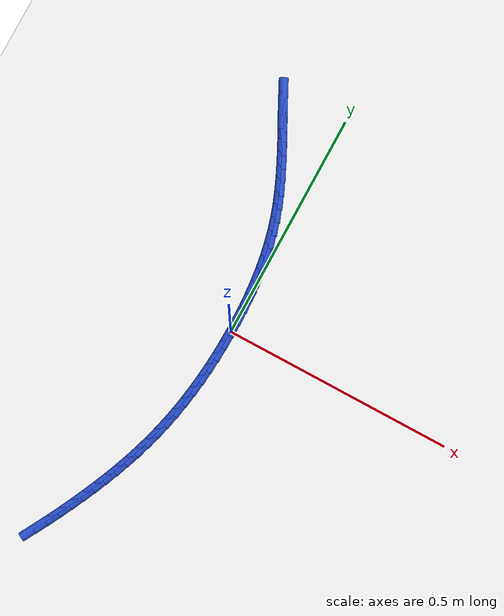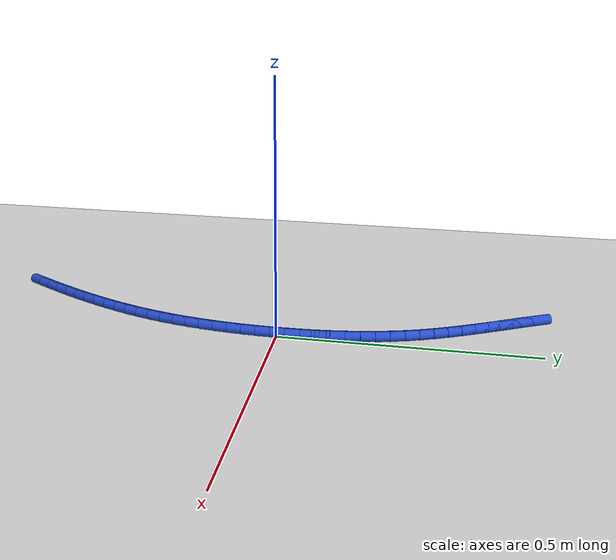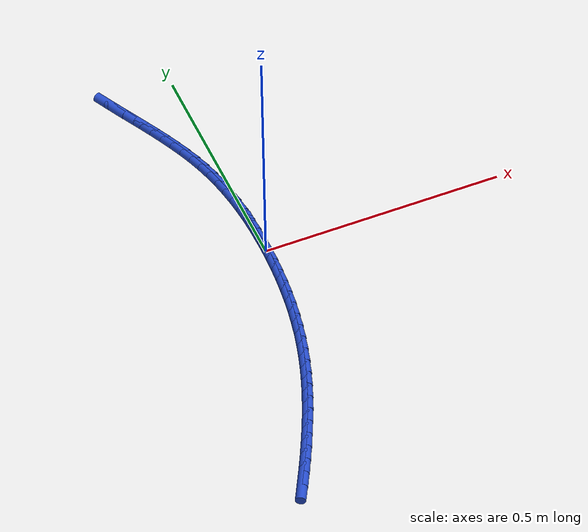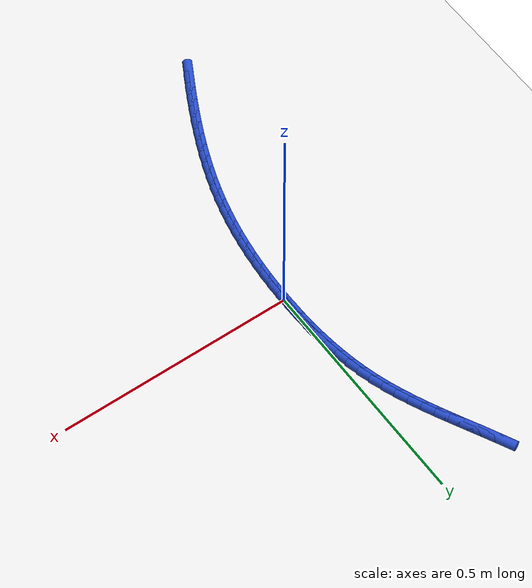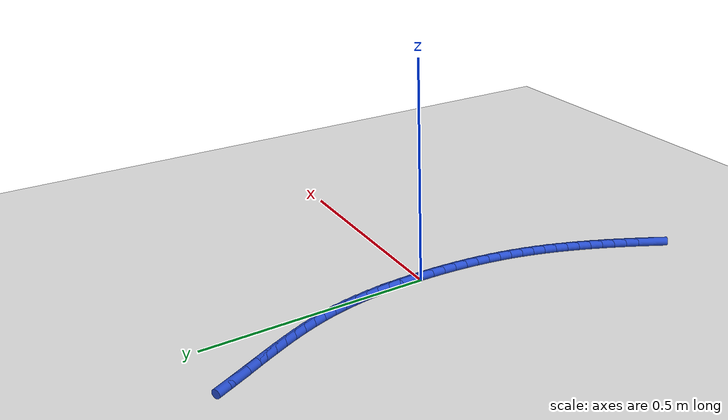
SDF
<sdf version="1.6">
 <world name="default">
  <model name="ground_plane">
   <static>1</static>
   <link name="link">
    <collision name="collision">
     <geometry><plane><normal>0 0 1</normal><size>100 100</size></plane></geometry>
     <surface><friction><ode><mu>100</mu><mu2>50</mu2></ode></friction></surface>
    </collision>
    <visual name="visual">
     <cast_shadows>0</cast_shadows>
     <geometry><plane><normal>0 0 1</normal><size>100 100</size></plane></geometry>
     <material>
      <script><uri>file://media/materials/scripts/gazebo.material</uri><name>Gazebo/WhiteGlow</name></script>
     </material>
    </visual>
   </link>
  </model>
  <model name="line">
   <link name="link_0">
    <pose>5.204170427930421e-18 5.551115123125783e-17 0.01 0 1.57 -1.568517945072388</pose>
    <collision name="collision">
     <geometry><cylinder><radius>0.01</radius><length>0.08</length></cylinder></geometry>
    </collision>
    <visual name="visual">
     <material>
      <script><name>Gazebo/Blue</name><uri>file://media/materials/scripts/gazebo.material</uri></script>
     </material>
     <geometry><cylinder><radius>0.01</radius><length>0.08</length></cylinder></geometry>
    </visual>
   </link>
   <link name="link_1">
    <pose>-6.546011237954096e-05 0.028730918293670336 0.01 0 1.57 -1.5427362013400832</pose>
    <collision name="collision">
     <geometry><cylinder><radius>0.01</radius><length>0.08</length></cylinder></geometry>
    </collision>
    <visual name="visual">
     <material>
      <script><name>Gazebo/Blue</name><uri>file://media/materials/scripts/gazebo.material</uri></script>
     </material>
     <geometry><cylinder><radius>0.01</radius><length>0.08</length></cylinder></geometry>
    </visual>
   </link>
   <link name="link_2">
    <pose>-0.0008714124399033945 0.057445714668465736 0.01 0 1.57 -1.5145626425322647</pose>
    <collision name="collision">
     <geometry><cylinder><radius>0.01</radius><length>0.08</length></cylinder></geometry>
    </collision>
    <visual name="visual">
     <material>
      <script><name>Gazebo/Blue</name><uri>file://media/materials/scripts/gazebo.material</uri></script>
     </material>
     <geometry><cylinder><radius>0.01</radius><length>0.08</length></cylinder></geometry>
    </visual>
   </link>
   <link name="link_3">
    <pose>-0.002483616302797522 0.08608520611659495 0.01 0 1.57 -1.4838658375514164</pose>
    <collision name="collision">
     <geometry><cylinder><radius>0.01</radius><length>0.08</length></cylinder></geometry>
    </collision>
    <visual name="visual">
     <material>
      <script><name>Gazebo/Blue</name><uri>file://media/materials/scripts/gazebo.material</uri></script>
     </material>
     <geometry><cylinder><radius>0.01</radius><length>0.08</length></cylinder></geometry>
    </visual>
   </link>
   <link name="link_4">
    <pose>-0.004967831021287884 0.1145902096302667 0.01 0 1.57 -1.450510043880159</pose>
    <collision name="collision">
     <geometry><cylinder><radius>0.01</radius><length>0.08</length></cylinder></geometry>
    </collision>
    <visual name="visual">
     <material>
      <script><name>Gazebo/Blue</name><uri>file://media/materials/scripts/gazebo.material</uri></script>
     </material>
     <geometry><cylinder><radius>0.01</radius><length>0.08</length></cylinder></geometry>
    </visual>
   </link>
   <link name="link_5">
    <pose>-0.008389815915600448 0.14290154220168974 0.01 0 1.57 -1.414360380445874</pose>
    <collision name="collision">
     <geometry><cylinder><radius>0.01</radius><length>0.08</length></cylinder></geometry>
    </collision>
    <visual name="visual">
     <material>
      <script><name>Gazebo/Blue</name><uri>file://media/materials/scripts/gazebo.material</uri></script>
     </material>
     <geometry><cylinder><radius>0.01</radius><length>0.08</length></cylinder></geometry>
    </visual>
   </link>
   <link name="link_6">
    <pose>-0.01281533030596118 0.17096002082307274 0.01 0 1.57 -1.3752896316140557</pose>
    <collision name="collision">
     <geometry><cylinder><radius>0.01</radius><length>0.08</length></cylinder></geometry>
    </collision>
    <visual name="visual">
     <material>
      <script><name>Gazebo/Blue</name><uri>file://media/materials/scripts/gazebo.material</uri></script>
     </material>
     <geometry><cylinder><radius>0.01</radius><length>0.08</length></cylinder></geometry>
    </visual>
   </link>
   <link name="link_7">
    <pose>-0.018310133512596034 0.19870646248662432 0.01 0 1.57 -1.3331869514808536</pose>
    <collision name="collision">
     <geometry><cylinder><radius>0.01</radius><length>0.08</length></cylinder></geometry>
    </collision>
    <visual name="visual">
     <material>
      <script><name>Gazebo/Blue</name><uri>file://media/materials/scripts/gazebo.material</uri></script>
     </material>
     <geometry><cylinder><radius>0.01</radius><length>0.08</length></cylinder></geometry>
    </visual>
   </link>
   <link name="link_8">
    <pose>-0.02493998485573099 0.22608168418455338 0.01 0 1.57 -1.2879750825685923</pose>
    <collision name="collision">
     <geometry><cylinder><radius>0.01</radius><length>0.08</length></cylinder></geometry>
    </collision>
    <visual name="visual">
     <material>
      <script><name>Gazebo/Blue</name><uri>file://media/materials/scripts/gazebo.material</uri></script>
     </material>
     <geometry><cylinder><radius>0.01</radius><length>0.08</length></cylinder></geometry>
    </visual>
   </link>
   <link name="link_9">
    <pose>-0.03277048302589974 0.2530266002973392 0.01 0 1.57 -1.2419998102372325</pose>
    <collision name="collision">
     <geometry><cylinder><radius>0.01</radius><length>0.08</length></cylinder></geometry>
    </collision>
    <visual name="visual">
     <material>
      <script><name>Gazebo/Blue</name><uri>file://media/materials/scripts/gazebo.material</uri></script>
     </material>
     <geometry><cylinder><radius>0.01</radius><length>0.08</length></cylinder></geometry>
    </visual>
   </link>
   <link name="link_10">
    <pose>-0.04180870425800232 0.27951760681951265 0.01 0 1.57 -1.2013344754317694</pose>
    <collision name="collision">
     <geometry><cylinder><radius>0.01</radius><length>0.08</length></cylinder></geometry>
    </collision>
    <visual name="visual">
     <material>
      <script><name>Gazebo/Blue</name><uri>file://media/materials/scripts/gazebo.material</uri></script>
     </material>
     <geometry><cylinder><radius>0.01</radius><length>0.08</length></cylinder></geometry>
    </visual>
   </link>
   <link name="link_11">
    <pose>-0.051916398236841216 0.30561920986515134 0.01 0 1.57 -1.1670903041491385</pose>
    <collision name="collision">
     <geometry><cylinder><radius>0.01</radius><length>0.08</length></cylinder></geometry>
    </collision>
    <visual name="visual">
     <material>
      <script><name>Gazebo/Blue</name><uri>file://media/materials/scripts/gazebo.material</uri></script>
     </material>
     <geometry><cylinder><radius>0.01</radius><length>0.08</length></cylinder></geometry>
    </visual>
   </link>
   <link name="link_12">
    <pose>-0.06293314005880227 0.3314093597925878 0.01 0 1.57 -1.1393570549071346</pose>
    <collision name="collision">
     <geometry><cylinder><radius>0.01</radius><length>0.08</length></cylinder></geometry>
    </collision>
    <visual name="visual">
     <material>
      <script><name>Gazebo/Blue</name><uri>file://media/materials/scripts/gazebo.material</uri></script>
     </material>
     <geometry><cylinder><radius>0.01</radius><length>0.08</length></cylinder></geometry>
    </visual>
   </link>
   <link name="link_13">
    <pose>-0.0746985048202713 0.3569660069601546 0.01 0 1.57 -1.118136493532173</pose>
    <collision name="collision">
     <geometry><cylinder><radius>0.01</radius><length>0.08</length></cylinder></geometry>
    </collision>
    <visual name="visual">
     <material>
      <script><name>Gazebo/Blue</name><uri>file://media/materials/scripts/gazebo.material</uri></script>
     </material>
     <geometry><cylinder><radius>0.01</radius><length>0.08</length></cylinder></geometry>
    </visual>
   </link>
   <link name="link_14">
    <pose>-0.08705206761763412 0.38236710172618454 0.01 0 1.57 -1.1033778785597421</pose>
    <collision name="collision">
     <geometry><cylinder><radius>0.01</radius><length>0.08</length></cylinder></geometry>
    </collision>
    <visual name="visual">
     <material>
      <script><name>Gazebo/Blue</name><uri>file://media/materials/scripts/gazebo.material</uri></script>
     </material>
     <geometry><cylinder><radius>0.01</radius><length>0.08</length></cylinder></geometry>
    </visual>
   </link>
   <link name="link_15">
    <pose>-0.0998334035472766 0.40769059444901 0.01 0 1.57 -1.0950053365914658</pose>
    <collision name="collision">
     <geometry><cylinder><radius>0.01</radius><length>0.08</length></cylinder></geometry>
    </collision>
    <visual name="visual">
     <material>
      <script><name>Gazebo/Blue</name><uri>file://media/materials/scripts/gazebo.material</uri></script>
     </material>
     <geometry><cylinder><radius>0.01</radius><length>0.08</length></cylinder></geometry>
    </visual>
   </link>
   <link name="link_16">
    <pose>-0.1128820877055846 0.43301443548696383 0.01 0 1.57 -1.0929364655374936</pose>
    <collision name="collision">
     <geometry><cylinder><radius>0.01</radius><length>0.08</length></cylinder></geometry>
    </collision>
    <visual name="visual">
     <material>
      <script><name>Gazebo/Blue</name><uri>file://media/materials/scripts/gazebo.material</uri></script>
     </material>
     <geometry><cylinder><radius>0.01</radius><length>0.08</length></cylinder></geometry>
    </visual>
   </link>
   <link name="link_17">
    <pose>-0.12603769518894398 0.4584165751983787 0.01 0 1.57 -1.097092465461059</pose>
    <collision name="collision">
     <geometry><cylinder><radius>0.01</radius><length>0.08</length></cylinder></geometry>
    </collision>
    <visual name="visual">
     <material>
      <script><name>Gazebo/Blue</name><uri>file://media/materials/scripts/gazebo.material</uri></script>
     </material>
     <geometry><cylinder><radius>0.01</radius><length>0.08</length></cylinder></geometry>
    </visual>
   </link>
   <link name="link_18">
    <pose>-0.13913980109374052 0.483974963941587 0.01 0 1.57 -1.107400438641858</pose>
    <collision name="collision">
     <geometry><cylinder><radius>0.01</radius><length>0.08</length></cylinder></geometry>
    </collision>
    <visual name="visual">
     <material>
      <script><name>Gazebo/Blue</name><uri>file://media/materials/scripts/gazebo.material</uri></script>
     </material>
     <geometry><cylinder><radius>0.01</radius><length>0.08</length></cylinder></geometry>
    </visual>
   </link>
   <link name="link_230">
    <pose>-0.15592374459036507 -0.5424151679701464 0.01 0 1.57 1.070445430609143</pose>
    <collision name="collision">
     <geometry><cylinder><radius>0.01</radius><length>0.08</length></cylinder></geometry>
    </collision>
    <visual name="visual">
     <material>
      <script><name>Gazebo/Blue</name><uri>file://media/materials/scripts/gazebo.material</uri></script>
     </material>
     <geometry><cylinder><radius>0.01</radius><length>0.08</length></cylinder></geometry>
    </visual>
   </link>
   <link name="link_231">
    <pose>-0.1416861275912206 -0.5163751066151642 0.01 0 1.57 1.088907843777583</pose>
    <collision name="collision">
     <geometry><cylinder><radius>0.01</radius><length>0.08</length></cylinder></geometry>
    </collision>
    <visual name="visual">
     <material>
      <script><name>Gazebo/Blue</name><uri>file://media/materials/scripts/gazebo.material</uri></script>
     </material>
     <geometry><cylinder><radius>0.01</radius><length>0.08</length></cylinder></geometry>
    </visual>
   </link>
   <link name="link_232">
    <pose>-0.12801228856519592 -0.4902307756971383 0.01 0 1.57 1.1046193153688186</pose>
    <collision name="collision">
     <geometry><cylinder><radius>0.01</radius><length>0.08</length></cylinder></geometry>
    </collision>
    <visual name="visual">
     <material>
      <script><name>Gazebo/Blue</name><uri>file://media/materials/scripts/gazebo.material</uri></script>
     </material>
     <geometry><cylinder><radius>0.01</radius><length>0.08</length></cylinder></geometry>
    </visual>
   </link>
   <link name="link_233">
    <pose>-0.11486792053843643 -0.464107440248801 0.01 0 1.57 1.1206244490144897</pose>
    <collision name="collision">
     <geometry><cylinder><radius>0.01</radius><length>0.08</length></cylinder></geometry>
    </collision>
    <visual name="visual">
     <material>
      <script><name>Gazebo/Blue</name><uri>file://media/materials/scripts/gazebo.material</uri></script>
     </material>
     <geometry><cylinder><radius>0.01</radius><length>0.08</length></cylinder></geometry>
    </visual>
   </link>
   <link name="link_234">
    <pose>-0.1022644091082261 -0.43802763410849715 0.01 0 1.57 1.1388217117007673</pose>
    <collision name="collision">
     <geometry><cylinder><radius>0.01</radius><length>0.08</length></cylinder></geometry>
    </collision>
    <visual name="visual">
     <material>
      <script><name>Gazebo/Blue</name><uri>file://media/materials/scripts/gazebo.material</uri></script>
     </material>
     <geometry><cylinder><radius>0.01</radius><length>0.08</length></cylinder></geometry>
    </visual>
   </link>
   <link name="link_235">
    <pose>-0.09024191078790415 -0.41194920509458255 0.01 0 1.57 1.1592446035690944</pose>
    <collision name="collision">
     <geometry><cylinder><radius>0.01</radius><length>0.08</length></cylinder></geometry>
    </collision>
    <visual name="visual">
     <material>
      <script><name>Gazebo/Blue</name><uri>file://media/materials/scripts/gazebo.material</uri></script>
     </material>
     <geometry><cylinder><radius>0.01</radius><length>0.08</length></cylinder></geometry>
    </visual>
   </link>
   <link name="link_236">
    <pose>-0.0788410307709803 -0.38582899225202544 0.01 0 1.57 1.1818774185790204</pose>
    <collision name="collision">
     <geometry><cylinder><radius>0.01</radius><length>0.08</length></cylinder></geometry>
    </collision>
    <visual name="visual">
     <material>
      <script><name>Gazebo/Blue</name><uri>file://media/materials/scripts/gazebo.material</uri></script>
     </material>
     <geometry><cylinder><radius>0.01</radius><length>0.08</length></cylinder></geometry>
    </visual>
   </link>
   <link name="link_237">
    <pose>-0.06810237425096409 -0.3596238346257938 0.01 0 1.57 1.2066811322871094</pose>
    <collision name="collision">
     <geometry><cylinder><radius>0.01</radius><length>0.08</length></cylinder></geometry>
    </collision>
    <visual name="visual">
     <material>
      <script><name>Gazebo/Blue</name><uri>file://media/materials/scripts/gazebo.material</uri></script>
     </material>
     <geometry><cylinder><radius>0.01</radius><length>0.08</length></cylinder></geometry>
    </visual>
   </link>
   <link name="link_238">
    <pose>-0.05806654642136515 -0.3332905712608557 0.01 0 1.57 1.2335902544658184</pose>
    <collision name="collision">
     <geometry><cylinder><radius>0.01</radius><length>0.08</length></cylinder></geometry>
    </collision>
    <visual name="visual">
     <material>
      <script><name>Gazebo/Blue</name><uri>file://media/materials/scripts/gazebo.material</uri></script>
     </material>
     <geometry><cylinder><radius>0.01</radius><length>0.08</length></cylinder></geometry>
    </visual>
   </link>
   <link name="link_239">
    <pose>-0.04877415247569306 -0.30678604120217917 0.01 0 1.57 1.2625101369785536</pose>
    <collision name="collision">
     <geometry><cylinder><radius>0.01</radius><length>0.08</length></cylinder></geometry>
    </collision>
    <visual name="visual">
     <material>
      <script><name>Gazebo/Blue</name><uri>file://media/materials/scripts/gazebo.material</uri></script>
     </material>
     <geometry><cylinder><radius>0.01</radius><length>0.08</length></cylinder></geometry>
    </visual>
   </link>
   <link name="link_240">
    <pose>-0.04026579760745766 -0.28006708349473314 0.01 0 1.57 1.293315060288178</pose>
    <collision name="collision">
     <geometry><cylinder><radius>0.01</radius><length>0.08</length></cylinder></geometry>
    </collision>
    <visual name="visual">
     <material>
      <script><name>Gazebo/Blue</name><uri>file://media/materials/scripts/gazebo.material</uri></script>
     </material>
     <geometry><cylinder><radius>0.01</radius><length>0.08</length></cylinder></geometry>
    </visual>
   </link>
   <link name="link_241">
    <pose>-0.03258208701016808 -0.25309053718348407 0.01 0 1.57 1.3255727635510217</pose>
    <collision name="collision">
     <geometry><cylinder><radius>0.01</radius><length>0.08</length></cylinder></geometry>
    </collision>
    <visual name="visual">
     <material>
      <script><name>Gazebo/Blue</name><uri>file://media/materials/scripts/gazebo.material</uri></script>
     </material>
     <geometry><cylinder><radius>0.01</radius><length>0.08</length></cylinder></geometry>
    </visual>
   </link>
   <link name="link_242">
    <pose>-0.02575745863064604 -0.22582040884873242 0.01 0 1.57 1.3573663710960382</pose>
    <collision name="collision">
     <geometry><cylinder><radius>0.01</radius><length>0.08</length></cylinder></geometry>
    </collision>
    <visual name="visual">
     <material>
      <script><name>Gazebo/Blue</name><uri>file://media/materials/scripts/gazebo.material</uri></script>
     </material>
     <geometry><cylinder><radius>0.01</radius><length>0.08</length></cylinder></geometry>
    </visual>
   </link>
   <link name="link_243">
    <pose>-0.019785931866879054 -0.19826767925414698 0.01 0 1.57 1.3879801206289741</pose>
    <collision name="collision">
     <geometry><cylinder><radius>0.01</radius><length>0.08</length></cylinder></geometry>
    </collision>
    <visual name="visual">
     <material>
      <script><name>Gazebo/Blue</name><uri>file://media/materials/scripts/gazebo.material</uri></script>
     </material>
     <geometry><cylinder><radius>0.01</radius><length>0.08</length></cylinder></geometry>
    </visual>
   </link>
   <link name="link_244">
    <pose>-0.01464524971911922 -0.17046224549052566 0.01 0 1.57 1.4174461666150207</pose>
    <collision name="collision">
     <geometry><cylinder><radius>0.01</radius><length>0.08</length></cylinder></geometry>
    </collision>
    <visual name="visual">
     <material>
      <script><name>Gazebo/Blue</name><uri>file://media/materials/scripts/gazebo.material</uri></script>
     </material>
     <geometry><cylinder><radius>0.01</radius><length>0.08</length></cylinder></geometry>
    </visual>
   </link>
   <link name="link_245">
    <pose>-0.01031311051292529 -0.14243405656931413 0.01 0 1.57 1.4458038285823545</pose>
    <collision name="collision">
     <geometry><cylinder><radius>0.01</radius><length>0.08</length></cylinder></geometry>
    </collision>
    <visual name="visual">
     <material>
      <script><name>Gazebo/Blue</name><uri>file://media/materials/scripts/gazebo.material</uri></script>
     </material>
     <geometry><cylinder><radius>0.01</radius><length>0.08</length></cylinder></geometry>
    </visual>
   </link>
   <link name="link_246">
    <pose>-0.0067672125738559965 -0.114213061501958 0.01 0 1.57 1.4730963682661622</pose>
    <collision name="collision">
     <geometry><cylinder><radius>0.01</radius><length>0.08</length></cylinder></geometry>
    </collision>
    <visual name="visual">
     <material>
      <script><name>Gazebo/Blue</name><uri>file://media/materials/scripts/gazebo.material</uri></script>
     </material>
     <geometry><cylinder><radius>0.01</radius><length>0.08</length></cylinder></geometry>
    </visual>
   </link>
   <link name="link_247">
    <pose>-0.003985254227470078 -0.08582920929990284 0.01 0 1.57 1.4993699269335499</pose>
    <collision name="collision">
     <geometry><cylinder><radius>0.01</radius><length>0.08</length></cylinder></geometry>
    </collision>
    <visual name="visual">
     <material>
      <script><name>Gazebo/Blue</name><uri>file://media/materials/scripts/gazebo.material</uri></script>
     </material>
     <geometry><cylinder><radius>0.01</radius><length>0.08</length></cylinder></geometry>
    </visual>
   </link>
   <link name="link_248">
    <pose>-0.00194493379932628 -0.05731244897459445 0.01 0 1.57 1.524672628677885</pose>
    <collision name="collision">
     <geometry><cylinder><radius>0.01</radius><length>0.08</length></cylinder></geometry>
    </collision>
    <visual name="visual">
     <material>
      <script><name>Gazebo/Blue</name><uri>file://media/materials/scripts/gazebo.material</uri></script>
     </material>
     <geometry><cylinder><radius>0.01</radius><length>0.08</length></cylinder></geometry>
    </visual>
   </link>
   <link name="link_249">
    <pose>-0.000623949614983342 -0.028692729537478326 0.01 0 1.57 1.5490538400796565</pose>
    <collision name="collision">
     <geometry><cylinder><radius>0.01</radius><length>0.08</length></cylinder></geometry>
    </collision>
    <visual name="visual">
     <material>
      <script><name>Gazebo/Blue</name><uri>file://media/materials/scripts/gazebo.material</uri></script>
     </material>
     <geometry><cylinder><radius>0.01</radius><length>0.08</length></cylinder></geometry>
    </visual>
   </link>
   <link name="link_250">
    <pose>-5.204170427930421e-18 -1.6653345369377348e-16 0.01 0 1.57 -1.5690290802372104</pose>
    <collision name="collision">
     <geometry><cylinder><radius>0.01</radius><length>0.08</length></cylinder></geometry>
    </collision>
    <visual name="visual">
     <material>
      <script><name>Gazebo/Blue</name><uri>file://media/materials/scripts/gazebo.material</uri></script>
     </material>
     <geometry><cylinder><radius>0.01</radius><length>0.08</length></cylinder></geometry>
    </visual>
   </link>
   <link name="link_251">
    <pose>-5.0783279935009626e-05 0.02873579062639438 0.01 0 1.57 -1.5463406350761422</pose>
    <collision name="collision">
     <geometry><cylinder><radius>0.01</radius><length>0.08</length></cylinder></geometry>
    </collision>
    <visual name="visual">
     <material>
      <script><name>Gazebo/Blue</name><uri>file://media/materials/scripts/gazebo.material</uri></script>
     </material>
     <geometry><cylinder><radius>0.01</radius><length>0.08</length></cylinder></geometry>
    </visual>
   </link>
   <link name="link_252">
    <pose>-0.0007539977803471013 0.05748469333025972 0.01 0 1.57 -1.557680582389765</pose>
    <collision name="collision">
     <geometry><cylinder><radius>0.01</radius><length>0.08</length></cylinder></geometry>
    </collision>
    <visual name="visual">
     <material>
      <script><name>Gazebo/Blue</name><uri>file://media/materials/scripts/gazebo.material</uri></script>
     </material>
     <geometry><cylinder><radius>0.01</radius><length>0.08</length></cylinder></geometry>
    </visual>
   </link>
  </model>
 </world>
</sdf>
